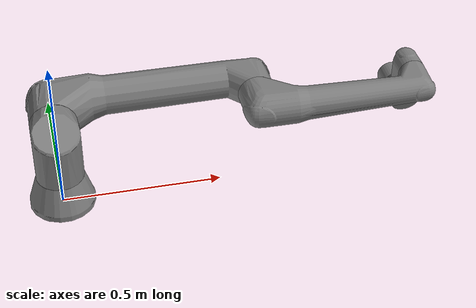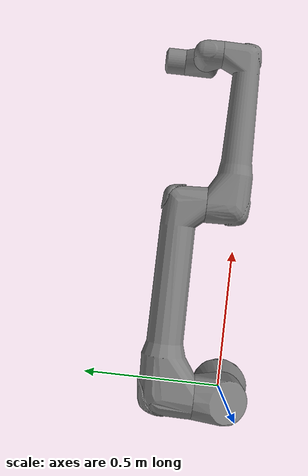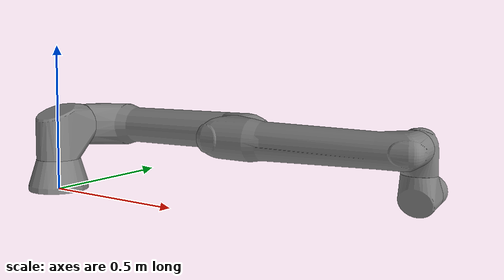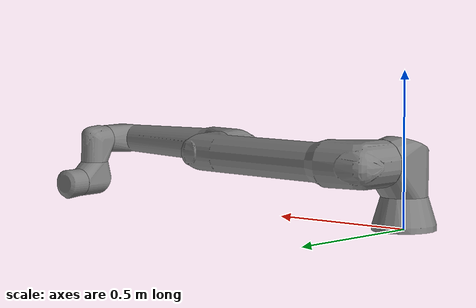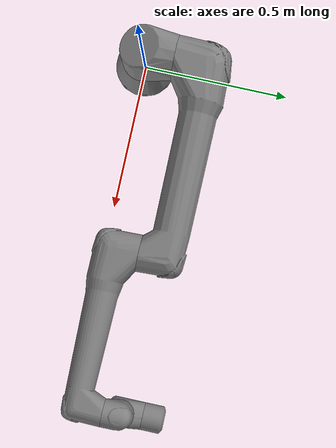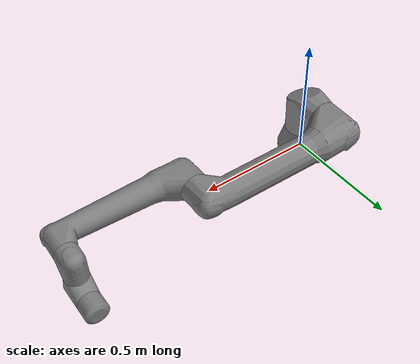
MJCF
<mujoco model="ur15">
  <compiler angle="radian"/>

  <asset>
    <mesh name="base" content_type="model/stl" file="/home/rlrk/src/ur15-line-render/assets/Universal_Robots_ROS2_Description/meshes/ur15/collision/base.stl"/>
    <mesh name="shoulder" content_type="model/stl" file="/home/rlrk/src/ur15-line-render/assets/Universal_Robots_ROS2_Description/meshes/ur15/collision/shoulder.stl"/>
    <mesh name="upperarm" content_type="model/stl" file="/home/rlrk/src/ur15-line-render/assets/Universal_Robots_ROS2_Description/meshes/ur15/collision/upperarm.stl"/>
    <mesh name="forearm" content_type="model/stl" file="/home/rlrk/src/ur15-line-render/assets/Universal_Robots_ROS2_Description/meshes/ur15/collision/forearm.stl"/>
    <mesh name="wrist1" content_type="model/stl" file="/home/rlrk/src/ur15-line-render/assets/Universal_Robots_ROS2_Description/meshes/ur15/collision/wrist1.stl"/>
    <mesh name="wrist2" content_type="model/stl" file="/home/rlrk/src/ur15-line-render/assets/Universal_Robots_ROS2_Description/meshes/ur15/collision/wrist2.stl"/>
    <mesh name="wrist3" content_type="model/stl" file="/home/rlrk/src/ur15-line-render/assets/Universal_Robots_ROS2_Description/meshes/ur15/collision/wrist3.stl"/>
  </asset>

  <worldbody>
    <geom pos="0 0 0" quat="-1 0 0 0" type="mesh" mesh="base"/>
    <body name="shoulder_link" pos="0 0 0.2186" quat="0 0 0 1">
      <inertial pos="2.4e-05 -0.025304 -0.033309" quat="0.695667 0.163117 -0.158899 0.681316" mass="9.9883" diaginertia="0.0520589 0.0513337 0.0299064"/>
      <joint name="shoulder_pan_joint" pos="0 0 0" axis="0 0 1" range="-6.28319 6.28319" actuatorfrcrange="-433 433"/>
      <geom quat="0 0 0 1" type="mesh" mesh="shoulder"/>
      <body name="upper_arm_link" quat="0.707107 0.707107 0 0">
        <inertial pos="-0.228491 -8.3e-05 0.192787" quat="0.508311 0.491722 0.494029 0.505732" mass="14.9255" diaginertia="1.1885 1.18368 0.0472925"/>
        <joint name="shoulder_lift_joint" pos="0 0 0" axis="0 0 1" range="-6.28319 6.28319" actuatorfrcrange="-433 433"/>
        <geom pos="0 0 0.1" quat="0.5 0.5 -0.5 -0.5" type="mesh" mesh="upperarm"/>
        <body name="forearm_link" pos="-0.6475 0 0">
          <inertial pos="-0.210929 1.9e-05 0.070552" quat="0.48756 0.51214 0.511914 0.487793" mass="6.1015" diaginertia="0.303502 0.297506 0.017818"/>
          <joint name="elbow_joint" pos="0 0 0" axis="0 0 1" range="-3.14159 3.14159" actuatorfrcrange="-204 204"/>
          <geom pos="0 0 0.125" quat="0.5 0.5 -0.5 -0.5" type="mesh" mesh="forearm"/>
          <body name="wrist_1_link" pos="-0.5164 0 0.1824">
            <inertial pos="2.5e-05 -0.016413 -0.019695" quat="0.833332 0.5518 -0.0145415 0.0293715" mass="2.089" diaginertia="0.00433968 0.00421107 0.00224825"/>
            <joint name="wrist_1_joint" pos="0 0 0" axis="0 0 1" range="-6.28319 6.28319" actuatorfrcrange="-70 70"/>
            <geom pos="0 0 -0.0502" quat="0.707107 0.707107 0 0" type="mesh" mesh="wrist1"/>
            <body name="wrist_2_link" pos="0 -0.1361 -2.79146e-11" quat="0.707107 0.707107 0 0">
              <inertial pos="2.5e-05 0.015886 -0.01996" quat="0.548572 0.831821 0.0724532 -0.0435051" mass="2.0869" diaginertia="0.00428972 0.00423268 0.0022586"/>
              <joint name="wrist_2_joint" pos="0 0 0" axis="0 0 1" range="-6.28319 6.28319" actuatorfrcrange="-70 70"/>
              <geom pos="0 0 -0.064" quat="1 0 0 0" type="mesh" mesh="wrist2"/>
              <body name="wrist_3_link" pos="0 0.1434 -2.94118e-11" quat="0.707107 -0.707107 0 0">
                <inertial pos="-1.8e-05 -0.000112 -0.053397" quat="0.933909 -0.0233442 -0.0218371 -0.356078" mass="1.0666" diaginertia="0.00140944 0.00140222 0.00100034"/>
                <joint name="wrist_3_joint" pos="0 0 0" axis="0 0 1" range="-6.28319 6.28319" actuatorfrcrange="-70 70"/>
                <geom pos="0 0 -0.0715" quat="0.707107 0.707107 0 0" type="mesh" mesh="wrist3"/>
              </body>
            </body>
          </body>
        </body>
      </body>
    </body>
  </worldbody>
</mujoco>
